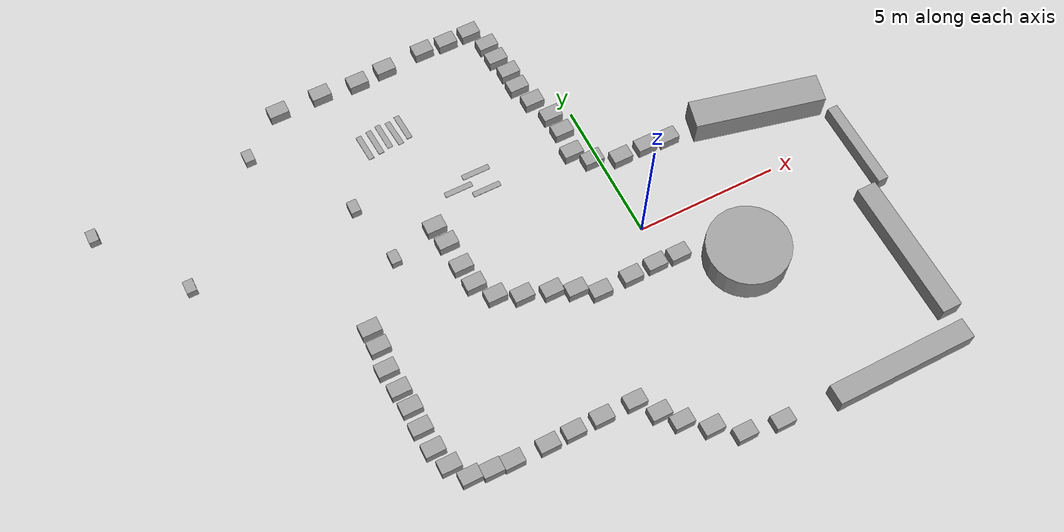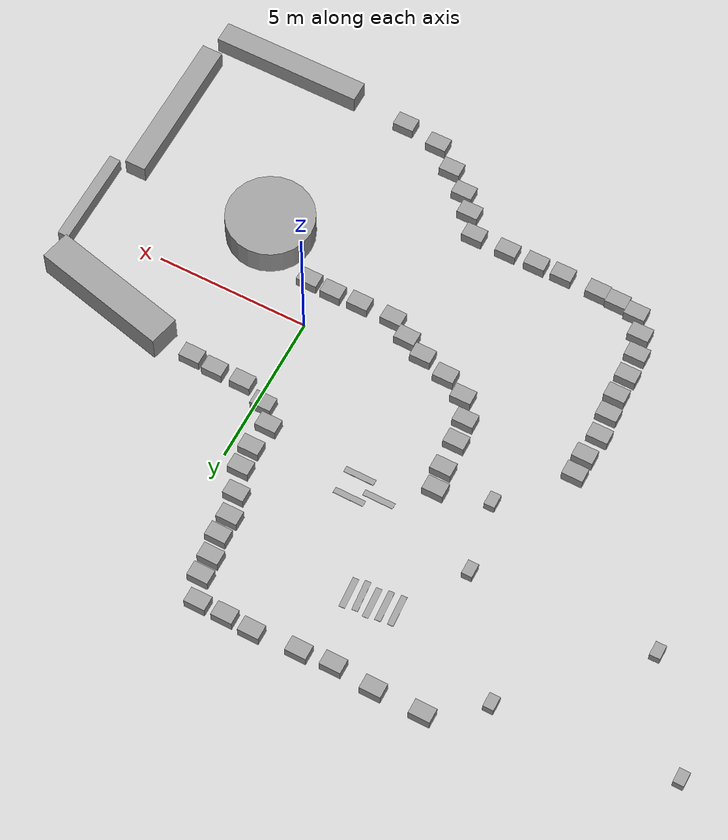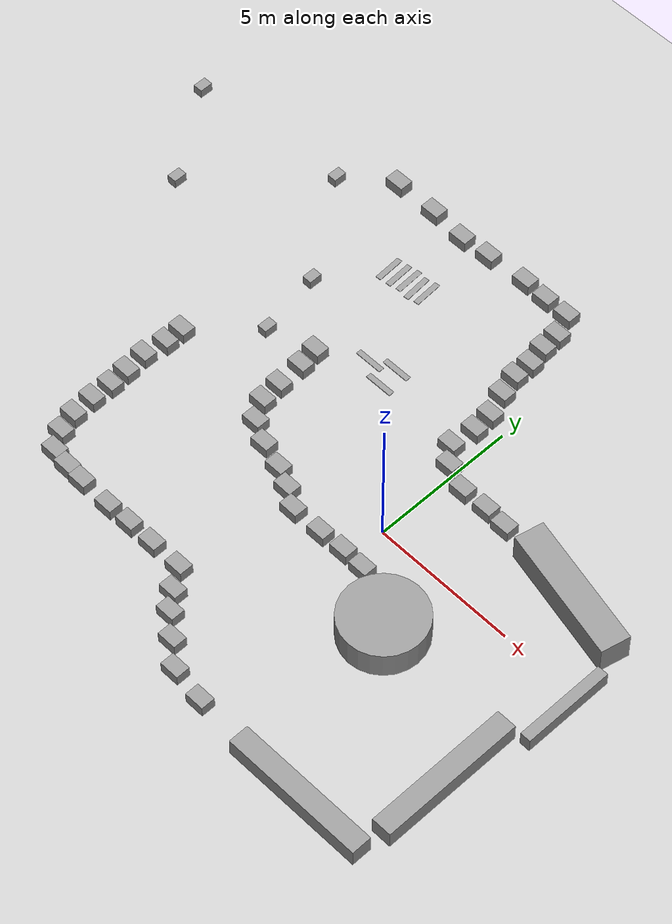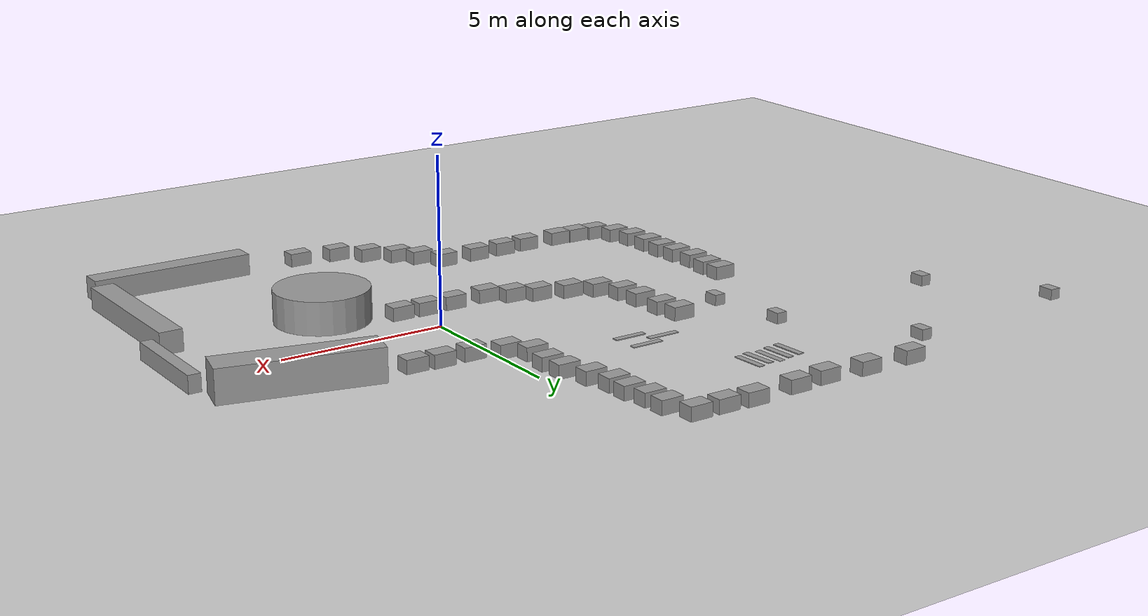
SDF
<sdf version="1.7">
 <world name="default">
  <light name="sun" type="directional">
   <pose>0 0 10 0 -0 0</pose>
   <diffuse>0.8 0.8 0.8 1</diffuse>
   <specular>0.2 0.2 0.2 1</specular>
   <attenuation>
    <range>1000</range>
    <constant>0.9</constant>
    <linear>0.01</linear>
    <quadratic>0.001</quadratic>
   </attenuation>
   <direction>-0.5 0.1 -0.9</direction>
   <spot><inner_angle>0</inner_angle><outer_angle>0</outer_angle><falloff>0</falloff></spot>
  </light>
  <model name="ground_plane">
   <static>1</static>
   <link name="link">
    <collision name="collision">
     <geometry><plane><normal>0 0 1</normal><size>100 100</size></plane></geometry>
     <surface><friction><ode><mu>10</mu><mu2>5</mu2></ode></friction></surface>
    </collision>
    <visual name="visual">
     <cast_shadows>0</cast_shadows>
     <geometry><plane><normal>0 0 1</normal><size>100 100</size></plane></geometry>
     <material>
      <script><uri>file://media/materials/scripts/gazebo.material</uri><name>Gazebo/Grey</name></script>
     </material>
    </visual>
   </link>
  </model>
  <gravity>0 0 -9.8</gravity>
  <magnetic_field>6e-06 2.3e-05 -4.2e-05</magnetic_field>
  <atmosphere type="adiabatic"/>
  <physics type="ode">
   <max_step_size>0.001</max_step_size>
   <real_time_factor>1</real_time_factor>
   <real_time_update_rate>1000</real_time_update_rate>
  </physics>
  <scene><ambient>0.4 0.4 0.4 1</ambient><background>0.7 0.7 0.7 1</background><shadows>1</shadows></scene>
  <spherical_coordinates>
   <surface_model>EARTH_WGS84</surface_model>
   <latitude_deg>0</latitude_deg>
   <longitude_deg>0</longitude_deg>
   <elevation>0</elevation>
   <heading_deg>0</heading_deg>
  </spherical_coordinates>
  <model name="unit_box">
   <pose>5.56434 2.101 0.499999 1e-06 0 -0.230096</pose>
   <link name="link">
    <inertial>
     <mass>1</mass>
     <inertia>
      <ixx>0.166667</ixx>
      <ixy>0</ixy>
      <ixz>0</ixz>
      <iyy>0.166667</iyy>
      <iyz>0</iyz>
      <izz>0.166667</izz>
     </inertia>
    </inertial>
    <collision name="collision"><geometry><box><size>4.56562 1 1</size></box></geometry></collision>
    <visual name="visual">
     <geometry><box><size>4.56562 1 1</size></box></geometry>
     <material>
      <script><name>Gazebo/Grey</name><uri>file://media/materials/scripts/gazebo.material</uri></script>
     </material>
    </visual>
   </link>
  </model>
  <model name="unit_box_0">
   <pose>7.93236 -0.652099 0.261171 -0.000222 -1e-06 -0.002843</pose>
   <link name="link">
    <inertial>
     <mass>1</mass>
     <inertia>
      <ixx>0.166667</ixx>
      <ixy>0</ixy>
      <ixz>0</ixz>
      <iyy>0.166667</iyy>
      <iyz>0</iyz>
      <izz>0.166667</izz>
     </inertia>
    </inertial>
    <collision name="collision"><geometry><box><size>0.370131 3.16213 0.523043</size></box></geometry></collision>
    <visual name="visual">
     <geometry><box><size>0.370131 3.16213 0.523043</size></box></geometry>
     <material>
      <script><name>Gazebo/Grey</name><uri>file://media/materials/scripts/gazebo.material</uri></script>
     </material>
    </visual>
   </link>
  </model>
  <model name="unit_box_1">
   <pose>7.20231 -4.70395 0.327613 0.000962 -1e-06 0.000656</pose>
   <link name="link">
    <inertial>
     <mass>1</mass>
     <inertia>
      <ixx>0.166667</ixx>
      <ixy>0</ixy>
      <ixz>0</ixz>
      <iyy>0.166667</iyy>
      <iyz>0</iyz>
      <izz>0.166667</izz>
     </inertia>
    </inertial>
    <collision name="collision"><geometry><box><size>0.692366 4.93966 0.659975</size></box></geometry></collision>
    <visual name="visual">
     <geometry><box><size>0.692366 4.93966 0.659975</size></box></geometry>
     <material>
      <script><name>Gazebo/Grey</name><uri>file://media/materials/scripts/gazebo.material</uri></script>
     </material>
    </visual>
   </link>
  </model>
  <model name="unit_box_1_clone">
   <pose>4.77985 -7.95704 0.327613 0.000962 -1e-06 -1.5701</pose>
   <link name="link">
    <inertial>
     <mass>1</mass>
     <inertia>
      <ixx>0.166667</ixx>
      <ixy>0</ixy>
      <ixz>0</ixz>
      <iyy>0.166667</iyy>
      <iyz>0</iyz>
      <izz>0.166667</izz>
     </inertia>
    </inertial>
    <collision name="collision"><geometry><box><size>0.692366 4.93966 0.659975</size></box></geometry></collision>
    <visual name="visual">
     <geometry><box><size>0.692366 4.93966 0.659975</size></box></geometry>
     <material>
      <script><name>Gazebo/Grey</name><uri>file://media/materials/scripts/gazebo.material</uri></script>
     </material>
    </visual>
   </link>
  </model>
  <model name="unit_cylinder">
   <pose>2.48692 -2.44229 0.499996 -3e-06 -3e-06 -0.002377</pose>
   <link name="link">
    <inertial>
     <mass>1</mass>
     <inertia><ixx>0.145833</ixx><ixy>0</ixy><ixz>0</ixz><iyy>0.145833</iyy><iyz>0</iyz><izz>0.125</izz></inertia>
    </inertial>
    <collision name="collision">
     <geometry><cylinder><radius>1.41697</radius><length>1</length></cylinder></geometry>
    </collision>
    <visual name="visual">
     <geometry><cylinder><radius>1.41697</radius><length>1</length></cylinder></geometry>
     <material>
      <script><name>Gazebo/Grey</name><uri>file://media/materials/scripts/gazebo.material</uri></script>
     </material>
    </visual>
   </link>
  </model>
  <model name="unit_box_2">
   <pose>2.41246 2.60615 0.202842 0 -0 0</pose>
   <link name="link">
    <inertial>
     <mass>1</mass>
     <inertia>
      <ixx>0.166667</ixx>
      <ixy>0</ixy>
      <ixz>0</ixz>
      <iyy>0.166667</iyy>
      <iyz>0</iyz>
      <izz>0.166667</izz>
     </inertia>
    </inertial>
    <collision name="collision">
     <geometry><box><size>0.686895 0.483439 0.405685</size></box></geometry>
    </collision>
    <visual name="visual">
     <geometry><box><size>0.686895 0.483439 0.405685</size></box></geometry>
     <material>
      <script><name>Gazebo/Grey</name><uri>file://media/materials/scripts/gazebo.material</uri></script>
     </material>
    </visual>
   </link>
  </model>
  <model name="unit_box_2_clone">
   <pose>1.59857 2.67242 0.202842 0 -0 0</pose>
   <link name="link">
    <inertial>
     <mass>1</mass>
     <inertia>
      <ixx>0.166667</ixx>
      <ixy>0</ixy>
      <ixz>0</ixz>
      <iyy>0.166667</iyy>
      <iyz>0</iyz>
      <izz>0.166667</izz>
     </inertia>
    </inertial>
    <collision name="collision">
     <geometry><box><size>0.686895 0.483439 0.405685</size></box></geometry>
    </collision>
    <visual name="visual">
     <geometry><box><size>0.686895 0.483439 0.405685</size></box></geometry>
     <material>
      <script><name>Gazebo/Grey</name><uri>file://media/materials/scripts/gazebo.material</uri></script>
     </material>
    </visual>
   </link>
  </model>
  <model name="unit_box_2_clone_0">
   <pose>0.643604 2.66253 0.202842 0 -0 0</pose>
   <link name="link">
    <inertial>
     <mass>1</mass>
     <inertia>
      <ixx>0.166667</ixx>
      <ixy>0</ixy>
      <ixz>0</ixz>
      <iyy>0.166667</iyy>
      <iyz>0</iyz>
      <izz>0.166667</izz>
     </inertia>
    </inertial>
    <collision name="collision">
     <geometry><box><size>0.686895 0.483439 0.405685</size></box></geometry>
    </collision>
    <visual name="visual">
     <geometry><box><size>0.686895 0.483439 0.405685</size></box></geometry>
     <material>
      <script><name>Gazebo/Grey</name><uri>file://media/materials/scripts/gazebo.material</uri></script>
     </material>
    </visual>
   </link>
  </model>
  <model name="unit_box_2_clone_1">
   <pose>-0.262439 3.01656 0.202842 0 -0 0</pose>
   <link name="link">
    <inertial>
     <mass>1</mass>
     <inertia>
      <ixx>0.166667</ixx>
      <ixy>0</ixy>
      <ixz>0</ixz>
      <iyy>0.166667</iyy>
      <iyz>0</iyz>
      <izz>0.166667</izz>
     </inertia>
    </inertial>
    <collision name="collision">
     <geometry><box><size>0.686895 0.483439 0.405685</size></box></geometry>
    </collision>
    <visual name="visual">
     <geometry><box><size>0.686895 0.483439 0.405685</size></box></geometry>
     <material>
      <script><name>Gazebo/Grey</name><uri>file://media/materials/scripts/gazebo.material</uri></script>
     </material>
    </visual>
   </link>
  </model>
  <model name="unit_box_2_clone_2">
   <pose>-0.747899 3.58207 0.202842 0 -0 0</pose>
   <link name="link">
    <inertial>
     <mass>1</mass>
     <inertia>
      <ixx>0.166667</ixx>
      <ixy>0</ixy>
      <ixz>0</ixz>
      <iyy>0.166667</iyy>
      <iyz>0</iyz>
      <izz>0.166667</izz>
     </inertia>
    </inertial>
    <collision name="collision">
     <geometry><box><size>0.686895 0.483439 0.405685</size></box></geometry>
    </collision>
    <visual name="visual">
     <geometry><box><size>0.686895 0.483439 0.405685</size></box></geometry>
     <material>
      <script><name>Gazebo/Grey</name><uri>file://media/materials/scripts/gazebo.material</uri></script>
     </material>
    </visual>
   </link>
  </model>
  <model name="unit_box_2_clone_3">
   <pose>0.553031 -1.39059 0.202842 0 -0 0</pose>
   <link name="link">
    <inertial>
     <mass>1</mass>
     <inertia>
      <ixx>0.166667</ixx>
      <ixy>0</ixy>
      <ixz>0</ixz>
      <iyy>0.166667</iyy>
      <iyz>0</iyz>
      <izz>0.166667</izz>
     </inertia>
    </inertial>
    <collision name="collision">
     <geometry><box><size>0.686895 0.483439 0.405685</size></box></geometry>
    </collision>
    <visual name="visual">
     <geometry><box><size>0.686895 0.483439 0.405685</size></box></geometry>
     <material>
      <script><name>Gazebo/Grey</name><uri>file://media/materials/scripts/gazebo.material</uri></script>
     </material>
    </visual>
   </link>
  </model>
  <model name="unit_box_2_clone_4">
   <pose>-0.283569 -1.35289 0.202842 0 -0 0</pose>
   <link name="link">
    <inertial>
     <mass>1</mass>
     <inertia>
      <ixx>0.166667</ixx>
      <ixy>0</ixy>
      <ixz>0</ixz>
      <iyy>0.166667</iyy>
      <iyz>0</iyz>
      <izz>0.166667</izz>
     </inertia>
    </inertial>
    <collision name="collision">
     <geometry><box><size>0.686895 0.483439 0.405685</size></box></geometry>
    </collision>
    <visual name="visual">
     <geometry><box><size>0.686895 0.483439 0.405685</size></box></geometry>
     <material>
      <script><name>Gazebo/Grey</name><uri>file://media/materials/scripts/gazebo.material</uri></script>
     </material>
    </visual>
   </link>
  </model>
  <model name="unit_box_2_clone_5">
   <pose>-1.20028 -1.38502 0.202842 0 -0 0</pose>
   <link name="link">
    <inertial>
     <mass>1</mass>
     <inertia>
      <ixx>0.166667</ixx>
      <ixy>0</ixy>
      <ixz>0</ixz>
      <iyy>0.166667</iyy>
      <iyz>0</iyz>
      <izz>0.166667</izz>
     </inertia>
    </inertial>
    <collision name="collision">
     <geometry><box><size>0.686895 0.483439 0.405685</size></box></geometry>
    </collision>
    <visual name="visual">
     <geometry><box><size>0.686895 0.483439 0.405685</size></box></geometry>
     <material>
      <script><name>Gazebo/Grey</name><uri>file://media/materials/scripts/gazebo.material</uri></script>
     </material>
    </visual>
   </link>
  </model>
  <model name="unit_box_2_clone_6">
   <pose>0.558147 -7.80664 0.202842 0 -0 0</pose>
   <link name="link">
    <inertial>
     <mass>1</mass>
     <inertia>
      <ixx>0.166667</ixx>
      <ixy>0</ixy>
      <ixz>0</ixz>
      <iyy>0.166667</iyy>
      <iyz>0</iyz>
      <izz>0.166667</izz>
     </inertia>
    </inertial>
    <collision name="collision">
     <geometry><box><size>0.686895 0.483439 0.405685</size></box></geometry>
    </collision>
    <visual name="visual">
     <geometry><box><size>0.686895 0.483439 0.405685</size></box></geometry>
     <material>
      <script><name>Gazebo/Grey</name><uri>file://media/materials/scripts/gazebo.material</uri></script>
     </material>
    </visual>
   </link>
  </model>
  <model name="unit_box_2_clone_7">
   <pose>-0.684612 -7.62182 0.202842 0 -0 0</pose>
   <link name="link">
    <inertial>
     <mass>1</mass>
     <inertia>
      <ixx>0.166667</ixx>
      <ixy>0</ixy>
      <ixz>0</ixz>
      <iyy>0.166667</iyy>
      <iyz>0</iyz>
      <izz>0.166667</izz>
     </inertia>
    </inertial>
    <collision name="collision">
     <geometry><box><size>0.686895 0.483439 0.405685</size></box></geometry>
    </collision>
    <visual name="visual">
     <geometry><box><size>0.686895 0.483439 0.405685</size></box></geometry>
     <material>
      <script><name>Gazebo/Grey</name><uri>file://media/materials/scripts/gazebo.material</uri></script>
     </material>
    </visual>
   </link>
  </model>
  <model name="unit_box_2_clone_8">
   <pose>-1.48082 -7 0.202842 0 -0 0</pose>
   <link name="link">
    <inertial>
     <mass>1</mass>
     <inertia>
      <ixx>0.166667</ixx>
      <ixy>0</ixy>
      <ixz>0</ixz>
      <iyy>0.166667</iyy>
      <iyz>0</iyz>
      <izz>0.166667</izz>
     </inertia>
    </inertial>
    <collision name="collision">
     <geometry><box><size>0.686895 0.483439 0.405685</size></box></geometry>
    </collision>
    <visual name="visual">
     <geometry><box><size>0.686895 0.483439 0.405685</size></box></geometry>
     <material>
      <script><name>Gazebo/Grey</name><uri>file://media/materials/scripts/gazebo.material</uri></script>
     </material>
    </visual>
   </link>
  </model>
  <model name="unit_box_2_clone_9">
   <pose>-2.2106 -6.41438 0.202842 0 -0 0</pose>
   <link name="link">
    <inertial>
     <mass>1</mass>
     <inertia>
      <ixx>0.166667</ixx>
      <ixy>0</ixy>
      <ixz>0</ixz>
      <iyy>0.166667</iyy>
      <iyz>0</iyz>
      <izz>0.166667</izz>
     </inertia>
    </inertial>
    <collision name="collision">
     <geometry><box><size>0.686895 0.483439 0.405685</size></box></geometry>
    </collision>
    <visual name="visual">
     <geometry><box><size>0.686895 0.483439 0.405685</size></box></geometry>
     <material>
      <script><name>Gazebo/Grey</name><uri>file://media/materials/scripts/gazebo.material</uri></script>
     </material>
    </visual>
   </link>
  </model>
  <model name="unit_box_2_clone_10">
   <pose>-2.69473 -5.85543 0.202842 0 -0 0</pose>
   <link name="link">
    <inertial>
     <mass>1</mass>
     <inertia>
      <ixx>0.166667</ixx>
      <ixy>0</ixy>
      <ixz>0</ixz>
      <iyy>0.166667</iyy>
      <iyz>0</iyz>
      <izz>0.166667</izz>
     </inertia>
    </inertial>
    <collision name="collision">
     <geometry><box><size>0.686895 0.483439 0.405685</size></box></geometry>
    </collision>
    <visual name="visual">
     <geometry><box><size>0.686895 0.483439 0.405685</size></box></geometry>
     <material>
      <script><name>Gazebo/Grey</name><uri>file://media/materials/scripts/gazebo.material</uri></script>
     </material>
    </visual>
   </link>
  </model>
  <model name="unit_box_2_clone_11">
   <pose>-3.19322 -5.18431 0.202842 0 -0 0</pose>
   <link name="link">
    <inertial>
     <mass>1</mass>
     <inertia>
      <ixx>0.166667</ixx>
      <ixy>0</ixy>
      <ixz>0</ixz>
      <iyy>0.166667</iyy>
      <iyz>0</iyz>
      <izz>0.166667</izz>
     </inertia>
    </inertial>
    <collision name="collision">
     <geometry><box><size>0.686895 0.483439 0.405685</size></box></geometry>
    </collision>
    <visual name="visual">
     <geometry><box><size>0.686895 0.483439 0.405685</size></box></geometry>
     <material>
      <script><name>Gazebo/Grey</name><uri>file://media/materials/scripts/gazebo.material</uri></script>
     </material>
    </visual>
   </link>
  </model>
  <model name="unit_box_2_clone_12">
   <pose>-4.34919 -5.17516 0.202842 0 -0 0</pose>
   <link name="link">
    <inertial>
     <mass>1</mass>
     <inertia>
      <ixx>0.166667</ixx>
      <ixy>0</ixy>
      <ixz>0</ixz>
      <iyy>0.166667</iyy>
      <iyz>0</iyz>
      <izz>0.166667</izz>
     </inertia>
    </inertial>
    <collision name="collision">
     <geometry><box><size>0.686895 0.483439 0.405685</size></box></geometry>
    </collision>
    <visual name="visual">
     <geometry><box><size>0.686895 0.483439 0.405685</size></box></geometry>
     <material>
      <script><name>Gazebo/Grey</name><uri>file://media/materials/scripts/gazebo.material</uri></script>
     </material>
    </visual>
   </link>
  </model>
  <model name="unit_box_2_clone_13">
   <pose>-5.33568 -5.18119 0.202842 0 -0 0</pose>
   <link name="link">
    <inertial>
     <mass>1</mass>
     <inertia>
      <ixx>0.166667</ixx>
      <ixy>0</ixy>
      <ixz>0</ixz>
      <iyy>0.166667</iyy>
      <iyz>0</iyz>
      <izz>0.166667</izz>
     </inertia>
    </inertial>
    <collision name="collision">
     <geometry><box><size>0.686895 0.483439 0.405685</size></box></geometry>
    </collision>
    <visual name="visual">
     <geometry><box><size>0.686895 0.483439 0.405685</size></box></geometry>
     <material>
      <script><name>Gazebo/Grey</name><uri>file://media/materials/scripts/gazebo.material</uri></script>
     </material>
    </visual>
   </link>
  </model>
  <model name="unit_box_2_clone_14">
   <pose>-6.23283 -5.20442 0.202842 0 -0 0</pose>
   <link name="link">
    <inertial>
     <mass>1</mass>
     <inertia>
      <ixx>0.166667</ixx>
      <ixy>0</ixy>
      <ixz>0</ixz>
      <iyy>0.166667</iyy>
      <iyz>0</iyz>
      <izz>0.166667</izz>
     </inertia>
    </inertial>
    <collision name="collision">
     <geometry><box><size>0.686895 0.483439 0.405685</size></box></geometry>
    </collision>
    <visual name="visual">
     <geometry><box><size>0.686895 0.483439 0.405685</size></box></geometry>
     <material>
      <script><name>Gazebo/Grey</name><uri>file://media/materials/scripts/gazebo.material</uri></script>
     </material>
    </visual>
   </link>
  </model>
  <model name="unit_box_2_clone_15">
   <pose>-7.42973 -5.17292 0.202842 0 0 -0.002489</pose>
   <link name="link">
    <inertial>
     <mass>1</mass>
     <inertia>
      <ixx>0.166667</ixx>
      <ixy>0</ixy>
      <ixz>0</ixz>
      <iyy>0.166667</iyy>
      <iyz>0</iyz>
      <izz>0.166667</izz>
     </inertia>
    </inertial>
    <collision name="collision">
     <geometry><box><size>0.686895 0.483439 0.405685</size></box></geometry>
    </collision>
    <visual name="visual">
     <geometry><box><size>0.686895 0.483439 0.405685</size></box></geometry>
     <material>
      <script><name>Gazebo/Grey</name><uri>file://media/materials/scripts/gazebo.material</uri></script>
     </material>
    </visual>
   </link>
  </model>
  <model name="unit_box_2_clone_16">
   <pose>-2.34294 -1.39677 0.202842 0 0 -0.01697</pose>
   <link name="link">
    <inertial>
     <mass>1</mass>
     <inertia>
      <ixx>0.166667</ixx>
      <ixy>0</ixy>
      <ixz>0</ixz>
      <iyy>0.166667</iyy>
      <iyz>0</iyz>
      <izz>0.166667</izz>
     </inertia>
    </inertial>
    <collision name="collision">
     <geometry><box><size>0.686895 0.483439 0.405685</size></box></geometry>
    </collision>
    <visual name="visual">
     <geometry><box><size>0.686895 0.483439 0.405685</size></box></geometry>
     <material>
      <script><name>Gazebo/Grey</name><uri>file://media/materials/scripts/gazebo.material</uri></script>
     </material>
    </visual>
   </link>
  </model>
  <model name="unit_box_2_clone_17">
   <pose>-3.02319 -0.994619 0.202842 0 0 -0.016986</pose>
   <link name="link">
    <inertial>
     <mass>1</mass>
     <inertia>
      <ixx>0.166667</ixx>
      <ixy>0</ixy>
      <ixz>0</ixz>
      <iyy>0.166667</iyy>
      <iyz>0</iyz>
      <izz>0.166667</izz>
     </inertia>
    </inertial>
    <collision name="collision">
     <geometry><box><size>0.686895 0.483439 0.405685</size></box></geometry>
    </collision>
    <visual name="visual">
     <geometry><box><size>0.686895 0.483439 0.405685</size></box></geometry>
     <material>
      <script><name>Gazebo/Grey</name><uri>file://media/materials/scripts/gazebo.material</uri></script>
     </material>
    </visual>
   </link>
  </model>
  <model name="unit_box_2_clone_18">
   <pose>-3.72995 -0.670648 0.202842 0 -0 0</pose>
   <link name="link">
    <inertial>
     <mass>1</mass>
     <inertia>
      <ixx>0.166667</ixx>
      <ixy>0</ixy>
      <ixz>0</ixz>
      <iyy>0.166667</iyy>
      <iyz>0</iyz>
      <izz>0.166667</izz>
     </inertia>
    </inertial>
    <collision name="collision">
     <geometry><box><size>0.686895 0.483439 0.405685</size></box></geometry>
    </collision>
    <visual name="visual">
     <geometry><box><size>0.686895 0.483439 0.405685</size></box></geometry>
     <material>
      <script><name>Gazebo/Grey</name><uri>file://media/materials/scripts/gazebo.material</uri></script>
     </material>
    </visual>
   </link>
  </model>
  <model name="unit_box_2_clone_19">
   <pose>-4.6501 -0.388828 0.202842 0 -0 0</pose>
   <link name="link">
    <inertial>
     <mass>1</mass>
     <inertia>
      <ixx>0.166667</ixx>
      <ixy>0</ixy>
      <ixz>0</ixz>
      <iyy>0.166667</iyy>
      <iyz>0</iyz>
      <izz>0.166667</izz>
     </inertia>
    </inertial>
    <collision name="collision">
     <geometry><box><size>0.686895 0.483439 0.405685</size></box></geometry>
    </collision>
    <visual name="visual">
     <geometry><box><size>0.686895 0.483439 0.405685</size></box></geometry>
     <material>
      <script><name>Gazebo/Grey</name><uri>file://media/materials/scripts/gazebo.material</uri></script>
     </material>
    </visual>
   </link>
  </model>
  <model name="unit_box_2_clone_20">
   <pose>-5.43112 0 0.202842 0 -0 0</pose>
   <link name="link">
    <inertial>
     <mass>1</mass>
     <inertia>
      <ixx>0.166667</ixx>
      <ixy>0</ixy>
      <ixz>0</ixz>
      <iyy>0.166667</iyy>
      <iyz>0</iyz>
      <izz>0.166667</izz>
     </inertia>
    </inertial>
    <collision name="collision">
     <geometry><box><size>0.686895 0.483439 0.405685</size></box></geometry>
    </collision>
    <visual name="visual">
     <geometry><box><size>0.686895 0.483439 0.405685</size></box></geometry>
     <material>
      <script><name>Gazebo/Grey</name><uri>file://media/materials/scripts/gazebo.material</uri></script>
     </material>
    </visual>
   </link>
  </model>
  <model name="unit_box_2_clone_21">
   <pose>-9.51524 0.737028 0.202842 0 -0 0</pose>
   <link name="link">
    <inertial>
     <mass>1</mass>
     <inertia>
      <ixx>0.166667</ixx>
      <ixy>0</ixy>
      <ixz>0</ixz>
      <iyy>0.166667</iyy>
      <iyz>0</iyz>
      <izz>0.166667</izz>
     </inertia>
    </inertial>
    <collision name="collision">
     <geometry><box><size>0.686895 0.483439 0.405685</size></box></geometry>
    </collision>
    <visual name="visual">
     <geometry><box><size>0.686895 0.483439 0.405685</size></box></geometry>
     <material>
      <script><name>Gazebo/Grey</name><uri>file://media/materials/scripts/gazebo.material</uri></script>
     </material>
    </visual>
   </link>
  </model>
  <model name="unit_box_2_clone_22">
   <pose>-9.51543 0.071651 0.202842 0 -0 0</pose>
   <link name="link">
    <inertial>
     <mass>1</mass>
     <inertia>
      <ixx>0.166667</ixx>
      <ixy>0</ixy>
      <ixz>0</ixz>
      <iyy>0.166667</iyy>
      <iyz>0</iyz>
      <izz>0.166667</izz>
     </inertia>
    </inertial>
    <collision name="collision">
     <geometry><box><size>0.686895 0.483439 0.405685</size></box></geometry>
    </collision>
    <visual name="visual">
     <geometry><box><size>0.686895 0.483439 0.405685</size></box></geometry>
     <material>
      <script><name>Gazebo/Grey</name><uri>file://media/materials/scripts/gazebo.material</uri></script>
     </material>
    </visual>
   </link>
  </model>
  <model name="unit_box_2_clone_23">
   <pose>-9.61406 -0.736189 0.202842 0 -0 0</pose>
   <link name="link">
    <inertial>
     <mass>1</mass>
     <inertia>
      <ixx>0.166667</ixx>
      <ixy>0</ixy>
      <ixz>0</ixz>
      <iyy>0.166667</iyy>
      <iyz>0</iyz>
      <izz>0.166667</izz>
     </inertia>
    </inertial>
    <collision name="collision">
     <geometry><box><size>0.686895 0.483439 0.405685</size></box></geometry>
    </collision>
    <visual name="visual">
     <geometry><box><size>0.686895 0.483439 0.405685</size></box></geometry>
     <material>
      <script><name>Gazebo/Grey</name><uri>file://media/materials/scripts/gazebo.material</uri></script>
     </material>
    </visual>
   </link>
  </model>
  <model name="unit_box_2_clone_24">
   <pose>-9.53495 -1.51675 0.202842 0 -0 0</pose>
   <link name="link">
    <inertial>
     <mass>1</mass>
     <inertia>
      <ixx>0.166667</ixx>
      <ixy>0</ixy>
      <ixz>0</ixz>
      <iyy>0.166667</iyy>
      <iyz>0</iyz>
      <izz>0.166667</izz>
     </inertia>
    </inertial>
    <collision name="collision">
     <geometry><box><size>0.686895 0.483439 0.405685</size></box></geometry>
    </collision>
    <visual name="visual">
     <geometry><box><size>0.686895 0.483439 0.405685</size></box></geometry>
     <material>
      <script><name>Gazebo/Grey</name><uri>file://media/materials/scripts/gazebo.material</uri></script>
     </material>
    </visual>
   </link>
  </model>
  <model name="unit_box_2_clone_25">
   <pose>-9.47472 -2.20674 0.202842 0 -0 0</pose>
   <link name="link">
    <inertial>
     <mass>1</mass>
     <inertia>
      <ixx>0.166667</ixx>
      <ixy>0</ixy>
      <ixz>0</ixz>
      <iyy>0.166667</iyy>
      <iyz>0</iyz>
      <izz>0.166667</izz>
     </inertia>
    </inertial>
    <collision name="collision">
     <geometry><box><size>0.686895 0.483439 0.405685</size></box></geometry>
    </collision>
    <visual name="visual">
     <geometry><box><size>0.686895 0.483439 0.405685</size></box></geometry>
     <material>
      <script><name>Gazebo/Grey</name><uri>file://media/materials/scripts/gazebo.material</uri></script>
     </material>
    </visual>
   </link>
  </model>
  <model name="unit_box_2_clone_26">
   <pose>-9.4789 -2.95464 0.202842 0 -0 0</pose>
   <link name="link">
    <inertial>
     <mass>1</mass>
     <inertia>
      <ixx>0.166667</ixx>
      <ixy>0</ixy>
      <ixz>0</ixz>
      <iyy>0.166667</iyy>
      <iyz>0</iyz>
      <izz>0.166667</izz>
     </inertia>
    </inertial>
    <collision name="collision">
     <geometry><box><size>0.686895 0.483439 0.405685</size></box></geometry>
    </collision>
    <visual name="visual">
     <geometry><box><size>0.686895 0.483439 0.405685</size></box></geometry>
     <material>
      <script><name>Gazebo/Grey</name><uri>file://media/materials/scripts/gazebo.material</uri></script>
     </material>
    </visual>
   </link>
  </model>
  <model name="unit_box_2_clone_27">
   <pose>-9.42269 -3.74149 0.202842 0 -0 0</pose>
   <link name="link">
    <inertial>
     <mass>1</mass>
     <inertia>
      <ixx>0.166667</ixx>
      <ixy>0</ixy>
      <ixz>0</ixz>
      <iyy>0.166667</iyy>
      <iyz>0</iyz>
      <izz>0.166667</izz>
     </inertia>
    </inertial>
    <collision name="collision">
     <geometry><box><size>0.686895 0.483439 0.405685</size></box></geometry>
    </collision>
    <visual name="visual">
     <geometry><box><size>0.686895 0.483439 0.405685</size></box></geometry>
     <material>
      <script><name>Gazebo/Grey</name><uri>file://media/materials/scripts/gazebo.material</uri></script>
     </material>
    </visual>
   </link>
  </model>
  <model name="unit_box_2_clone_28">
   <pose>-9.2104 -4.42363 0.202842 0 -0 0</pose>
   <link name="link">
    <inertial>
     <mass>1</mass>
     <inertia>
      <ixx>0.166667</ixx>
      <ixy>0</ixy>
      <ixz>0</ixz>
      <iyy>0.166667</iyy>
      <iyz>0</iyz>
      <izz>0.166667</izz>
     </inertia>
    </inertial>
    <collision name="collision">
     <geometry><box><size>0.686895 0.483439 0.405685</size></box></geometry>
    </collision>
    <visual name="visual">
     <geometry><box><size>0.686895 0.483439 0.405685</size></box></geometry>
     <material>
      <script><name>Gazebo/Grey</name><uri>file://media/materials/scripts/gazebo.material</uri></script>
     </material>
    </visual>
   </link>
  </model>
  <model name="unit_box_2_clone_29">
   <pose>-8.80318 -5.02528 0.202842 0 0 -0.002488</pose>
   <link name="link">
    <inertial>
     <mass>1</mass>
     <inertia>
      <ixx>0.166667</ixx>
      <ixy>0</ixy>
      <ixz>0</ixz>
      <iyy>0.166667</iyy>
      <iyz>0</iyz>
      <izz>0.166667</izz>
     </inertia>
    </inertial>
    <collision name="collision">
     <geometry><box><size>0.686895 0.483439 0.405685</size></box></geometry>
    </collision>
    <visual name="visual">
     <geometry><box><size>0.686895 0.483439 0.405685</size></box></geometry>
     <material>
      <script><name>Gazebo/Grey</name><uri>file://media/materials/scripts/gazebo.material</uri></script>
     </material>
    </visual>
   </link>
  </model>
  <model name="unit_box_2_clone_30">
   <pose>-8.11653 -5.13186 0.202842 0 0 -0.002488</pose>
   <link name="link">
    <inertial>
     <mass>1</mass>
     <inertia>
      <ixx>0.166667</ixx>
      <ixy>0</ixy>
      <ixz>0</ixz>
      <iyy>0.166667</iyy>
      <iyz>0</iyz>
      <izz>0.166667</izz>
     </inertia>
    </inertial>
    <collision name="collision">
     <geometry><box><size>0.686895 0.483439 0.405685</size></box></geometry>
    </collision>
    <visual name="visual">
     <geometry><box><size>0.686895 0.483439 0.405685</size></box></geometry>
     <material>
      <script><name>Gazebo/Grey</name><uri>file://media/materials/scripts/gazebo.material</uri></script>
     </material>
    </visual>
   </link>
  </model>
  <model name="unit_box_2_clone_31">
   <pose>-5.85416 0.677848 0.202842 0 -0 0</pose>
   <link name="link">
    <inertial>
     <mass>1</mass>
     <inertia>
      <ixx>0.166667</ixx>
      <ixy>0</ixy>
      <ixz>0</ixz>
      <iyy>0.166667</iyy>
      <iyz>0</iyz>
      <izz>0.166667</izz>
     </inertia>
    </inertial>
    <collision name="collision">
     <geometry><box><size>0.686895 0.483439 0.405685</size></box></geometry>
    </collision>
    <visual name="visual">
     <geometry><box><size>0.686895 0.483439 0.405685</size></box></geometry>
     <material>
      <script><name>Gazebo/Grey</name><uri>file://media/materials/scripts/gazebo.material</uri></script>
     </material>
    </visual>
   </link>
  </model>
  <model name="unit_box_2_clone_32">
   <pose>-5.94013 1.44454 0.202842 0 -0 0</pose>
   <link name="link">
    <inertial>
     <mass>1</mass>
     <inertia>
      <ixx>0.166667</ixx>
      <ixy>0</ixy>
      <ixz>0</ixz>
      <iyy>0.166667</iyy>
      <iyz>0</iyz>
      <izz>0.166667</izz>
     </inertia>
    </inertial>
    <collision name="collision">
     <geometry><box><size>0.686895 0.483439 0.405685</size></box></geometry>
    </collision>
    <visual name="visual">
     <geometry><box><size>0.686895 0.483439 0.405685</size></box></geometry>
     <material>
      <script><name>Gazebo/Grey</name><uri>file://media/materials/scripts/gazebo.material</uri></script>
     </material>
    </visual>
   </link>
  </model>
  <model name="unit_box_2_clone_33">
   <pose>-5.99973 2.41014 0.202842 0 -0 0</pose>
   <link name="link">
    <inertial>
     <mass>1</mass>
     <inertia>
      <ixx>0.166667</ixx>
      <ixy>0</ixy>
      <ixz>0</ixz>
      <iyy>0.166667</iyy>
      <iyz>0</iyz>
      <izz>0.166667</izz>
     </inertia>
    </inertial>
    <collision name="collision">
     <geometry><box><size>0.686895 0.483439 0.405685</size></box></geometry>
    </collision>
    <visual name="visual">
     <geometry><box><size>0.686895 0.483439 0.405685</size></box></geometry>
     <material>
      <script><name>Gazebo/Grey</name><uri>file://media/materials/scripts/gazebo.material</uri></script>
     </material>
    </visual>
   </link>
  </model>
  <model name="unit_box_2_clone_34">
   <pose>-6.1049 3.11571 0.202842 0 -0 0</pose>
   <link name="link">
    <inertial>
     <mass>1</mass>
     <inertia>
      <ixx>0.166667</ixx>
      <ixy>0</ixy>
      <ixz>0</ixz>
      <iyy>0.166667</iyy>
      <iyz>0</iyz>
      <izz>0.166667</izz>
     </inertia>
    </inertial>
    <collision name="collision">
     <geometry><box><size>0.686895 0.483439 0.405685</size></box></geometry>
    </collision>
    <visual name="visual">
     <geometry><box><size>0.686895 0.483439 0.405685</size></box></geometry>
     <material>
      <script><name>Gazebo/Grey</name><uri>file://media/materials/scripts/gazebo.material</uri></script>
     </material>
    </visual>
   </link>
  </model>
  <model name="unit_box_2_clone_35">
   <pose>-0.650294 4.46919 0.202842 0 -0 0</pose>
   <link name="link">
    <inertial>
     <mass>1</mass>
     <inertia>
      <ixx>0.166667</ixx>
      <ixy>0</ixy>
      <ixz>0</ixz>
      <iyy>0.166667</iyy>
      <iyz>0</iyz>
      <izz>0.166667</izz>
     </inertia>
    </inertial>
    <collision name="collision">
     <geometry><box><size>0.686895 0.483439 0.405685</size></box></geometry>
    </collision>
    <visual name="visual">
     <geometry><box><size>0.686895 0.483439 0.405685</size></box></geometry>
     <material>
      <script><name>Gazebo/Grey</name><uri>file://media/materials/scripts/gazebo.material</uri></script>
     </material>
    </visual>
   </link>
  </model>
  <model name="unit_box_2_clone_36">
   <pose>-0.703424 5.19146 0.202842 0 -0 0</pose>
   <link name="link">
    <inertial>
     <mass>1</mass>
     <inertia>
      <ixx>0.166667</ixx>
      <ixy>0</ixy>
      <ixz>0</ixz>
      <iyy>0.166667</iyy>
      <iyz>0</iyz>
      <izz>0.166667</izz>
     </inertia>
    </inertial>
    <collision name="collision">
     <geometry><box><size>0.686895 0.483439 0.405685</size></box></geometry>
    </collision>
    <visual name="visual">
     <geometry><box><size>0.686895 0.483439 0.405685</size></box></geometry>
     <material>
      <script><name>Gazebo/Grey</name><uri>file://media/materials/scripts/gazebo.material</uri></script>
     </material>
    </visual>
   </link>
  </model>
  <model name="unit_box_2_clone_37">
   <pose>-1 6 0.202842 0 -0 0</pose>
   <link name="link">
    <inertial>
     <mass>1</mass>
     <inertia>
      <ixx>0.166667</ixx>
      <ixy>0</ixy>
      <ixz>0</ixz>
      <iyy>0.166667</iyy>
      <iyz>0</iyz>
      <izz>0.166667</izz>
     </inertia>
    </inertial>
    <collision name="collision">
     <geometry><box><size>0.686895 0.483439 0.405685</size></box></geometry>
    </collision>
    <visual name="visual">
     <geometry><box><size>0.686895 0.483439 0.405685</size></box></geometry>
     <material>
      <script><name>Gazebo/Grey</name><uri>file://media/materials/scripts/gazebo.material</uri></script>
     </material>
    </visual>
   </link>
  </model>
  <model name="unit_box_2_clone_38">
   <pose>-1.19788 6.75658 0.202842 0 -0 0</pose>
   <link name="link">
    <inertial>
     <mass>1</mass>
     <inertia>
      <ixx>0.166667</ixx>
      <ixy>0</ixy>
      <ixz>0</ixz>
      <iyy>0.166667</iyy>
      <iyz>0</iyz>
      <izz>0.166667</izz>
     </inertia>
    </inertial>
    <collision name="collision">
     <geometry><box><size>0.686895 0.483439 0.405685</size></box></geometry>
    </collision>
    <visual name="visual">
     <geometry><box><size>0.686895 0.483439 0.405685</size></box></geometry>
     <material>
      <script><name>Gazebo/Grey</name><uri>file://media/materials/scripts/gazebo.material</uri></script>
     </material>
    </visual>
   </link>
  </model>
  <model name="unit_box_2_clone_39">
   <pose>-1.19523 7.42906 0.202842 0 -0 0</pose>
   <link name="link">
    <inertial>
     <mass>1</mass>
     <inertia>
      <ixx>0.166667</ixx>
      <ixy>0</ixy>
      <ixz>0</ixz>
      <iyy>0.166667</iyy>
      <iyz>0</iyz>
      <izz>0.166667</izz>
     </inertia>
    </inertial>
    <collision name="collision">
     <geometry><box><size>0.686895 0.483439 0.405685</size></box></geometry>
    </collision>
    <visual name="visual">
     <geometry><box><size>0.686895 0.483439 0.405685</size></box></geometry>
     <material>
      <script><name>Gazebo/Grey</name><uri>file://media/materials/scripts/gazebo.material</uri></script>
     </material>
    </visual>
   </link>
  </model>
  <model name="unit_box_2_clone_40">
   <pose>-1.33507 8.12528 0.202842 0 -0 0</pose>
   <link name="link">
    <inertial>
     <mass>1</mass>
     <inertia>
      <ixx>0.166667</ixx>
      <ixy>0</ixy>
      <ixz>0</ixz>
      <iyy>0.166667</iyy>
      <iyz>0</iyz>
      <izz>0.166667</izz>
     </inertia>
    </inertial>
    <collision name="collision">
     <geometry><box><size>0.686895 0.483439 0.405685</size></box></geometry>
    </collision>
    <visual name="visual">
     <geometry><box><size>0.686895 0.483439 0.405685</size></box></geometry>
     <material>
      <script><name>Gazebo/Grey</name><uri>file://media/materials/scripts/gazebo.material</uri></script>
     </material>
    </visual>
   </link>
  </model>
  <model name="unit_box_2_clone_41">
   <pose>-1.375 8.78727 0.202842 0 -0 0</pose>
   <link name="link">
    <inertial>
     <mass>1</mass>
     <inertia>
      <ixx>0.166667</ixx>
      <ixy>0</ixy>
      <ixz>0</ixz>
      <iyy>0.166667</iyy>
      <iyz>0</iyz>
      <izz>0.166667</izz>
     </inertia>
    </inertial>
    <collision name="collision">
     <geometry><box><size>0.686895 0.483439 0.405685</size></box></geometry>
    </collision>
    <visual name="visual">
     <geometry><box><size>0.686895 0.483439 0.405685</size></box></geometry>
     <material>
      <script><name>Gazebo/Grey</name><uri>file://media/materials/scripts/gazebo.material</uri></script>
     </material>
    </visual>
   </link>
  </model>
  <model name="unit_box_2_clone_42">
   <pose>-1.7103 9.55019 0.202842 0 -0 0</pose>
   <link name="link">
    <inertial>
     <mass>1</mass>
     <inertia>
      <ixx>0.166667</ixx>
      <ixy>0</ixy>
      <ixz>0</ixz>
      <iyy>0.166667</iyy>
      <iyz>0</iyz>
      <izz>0.166667</izz>
     </inertia>
    </inertial>
    <collision name="collision">
     <geometry><box><size>0.686895 0.483439 0.405685</size></box></geometry>
    </collision>
    <visual name="visual">
     <geometry><box><size>0.686895 0.483439 0.405685</size></box></geometry>
     <material>
      <script><name>Gazebo/Grey</name><uri>file://media/materials/scripts/gazebo.material</uri></script>
     </material>
    </visual>
   </link>
  </model>
  <model name="unit_box_2_clone_43">
   <pose>-2.60223 9.55238 0.202842 0 -0 0</pose>
   <link name="link">
    <inertial>
     <mass>1</mass>
     <inertia>
      <ixx>0.166667</ixx>
      <ixy>0</ixy>
      <ixz>0</ixz>
      <iyy>0.166667</iyy>
      <iyz>0</iyz>
      <izz>0.166667</izz>
     </inertia>
    </inertial>
    <collision name="collision">
     <geometry><box><size>0.686895 0.483439 0.405685</size></box></geometry>
    </collision>
    <visual name="visual">
     <geometry><box><size>0.686895 0.483439 0.405685</size></box></geometry>
     <material>
      <script><name>Gazebo/Grey</name><uri>file://media/materials/scripts/gazebo.material</uri></script>
     </material>
    </visual>
   </link>
  </model>
  <model name="unit_box_2_clone_44">
   <pose>-3.50843 9.60202 0.202842 0 -0 0</pose>
   <link name="link">
    <inertial>
     <mass>1</mass>
     <inertia>
      <ixx>0.166667</ixx>
      <ixy>0</ixy>
      <ixz>0</ixz>
      <iyy>0.166667</iyy>
      <iyz>0</iyz>
      <izz>0.166667</izz>
     </inertia>
    </inertial>
    <collision name="collision">
     <geometry><box><size>0.686895 0.483439 0.405685</size></box></geometry>
    </collision>
    <visual name="visual">
     <geometry><box><size>0.686895 0.483439 0.405685</size></box></geometry>
     <material>
      <script><name>Gazebo/Grey</name><uri>file://media/materials/scripts/gazebo.material</uri></script>
     </material>
    </visual>
   </link>
  </model>
  <model name="unit_box_2_clone_45">
   <pose>-5 9.50836 0.202842 0 -0 0</pose>
   <link name="link">
    <inertial>
     <mass>1</mass>
     <inertia>
      <ixx>0.166667</ixx>
      <ixy>0</ixy>
      <ixz>0</ixz>
      <iyy>0.166667</iyy>
      <iyz>0</iyz>
      <izz>0.166667</izz>
     </inertia>
    </inertial>
    <collision name="collision">
     <geometry><box><size>0.686895 0.483439 0.405685</size></box></geometry>
    </collision>
    <visual name="visual">
     <geometry><box><size>0.686895 0.483439 0.405685</size></box></geometry>
     <material>
      <script><name>Gazebo/Grey</name><uri>file://media/materials/scripts/gazebo.material</uri></script>
     </material>
    </visual>
   </link>
  </model>
  <model name="unit_box_2_clone_46">
   <pose>-6.07387 9.42628 0.202842 0 -0 0</pose>
   <link name="link">
    <inertial>
     <mass>1</mass>
     <inertia>
      <ixx>0.166667</ixx>
      <ixy>0</ixy>
      <ixz>0</ixz>
      <iyy>0.166667</iyy>
      <iyz>0</iyz>
      <izz>0.166667</izz>
     </inertia>
    </inertial>
    <collision name="collision">
     <geometry><box><size>0.686895 0.483439 0.405685</size></box></geometry>
    </collision>
    <visual name="visual">
     <geometry><box><size>0.686895 0.483439 0.405685</size></box></geometry>
     <material>
      <script><name>Gazebo/Grey</name><uri>file://media/materials/scripts/gazebo.material</uri></script>
     </material>
    </visual>
   </link>
  </model>
  <model name="unit_box_2_clone_47">
   <pose>-7.42275 9.54484 0.202842 0 -0 0</pose>
   <link name="link">
    <inertial>
     <mass>1</mass>
     <inertia>
      <ixx>0.166667</ixx>
      <ixy>0</ixy>
      <ixz>0</ixz>
      <iyy>0.166667</iyy>
      <iyz>0</iyz>
      <izz>0.166667</izz>
     </inertia>
    </inertial>
    <collision name="collision">
     <geometry><box><size>0.686895 0.483439 0.405685</size></box></geometry>
    </collision>
    <visual name="visual">
     <geometry><box><size>0.686895 0.483439 0.405685</size></box></geometry>
     <material>
      <script><name>Gazebo/Grey</name><uri>file://media/materials/scripts/gazebo.material</uri></script>
     </material>
    </visual>
   </link>
  </model>
  <model name="unit_box_2_clone_48">
   <pose>-9 9.55545 0.202842 0 -0 0</pose>
   <link name="link">
    <inertial>
     <mass>1</mass>
     <inertia>
      <ixx>0.166667</ixx>
      <ixy>0</ixy>
      <ixz>0</ixz>
      <iyy>0.166667</iyy>
      <iyz>0</iyz>
      <izz>0.166667</izz>
     </inertia>
    </inertial>
    <collision name="collision">
     <geometry><box><size>0.686895 0.483439 0.405685</size></box></geometry>
    </collision>
    <visual name="visual">
     <geometry><box><size>0.686895 0.483439 0.405685</size></box></geometry>
     <material>
      <script><name>Gazebo/Grey</name><uri>file://media/materials/scripts/gazebo.material</uri></script>
     </material>
    </visual>
   </link>
  </model>
  <model name="unit_box_3">
   <pose>-3.90015 3.70878 0.014494 0 -0 0</pose>
   <link name="link">
    <inertial>
     <mass>1</mass>
     <inertia>
      <ixx>0.166667</ixx>
      <ixy>0</ixy>
      <ixz>0</ixz>
      <iyy>0.166667</iyy>
      <iyz>0</iyz>
      <izz>0.166667</izz>
     </inertia>
    </inertial>
    <collision name="collision"><geometry><box><size>1 0.19429 0.0289883</size></box></geometry></collision>
    <visual name="visual">
     <geometry><box><size>1 0.19429 0.0289883</size></box></geometry>
     <material>
      <script><name>Gazebo/Grey</name><uri>file://media/materials/scripts/gazebo.material</uri></script>
     </material>
    </visual>
   </link>
  </model>
  <model name="unit_box_3_clone">
   <pose>-4.75517 4.12087 0.011012 0 -0 0.000483</pose>
   <link name="link">
    <inertial>
     <mass>1</mass>
     <inertia>
      <ixx>0.166667</ixx>
      <ixy>0</ixy>
      <ixz>0</ixz>
      <iyy>0.166667</iyy>
      <iyz>0</iyz>
      <izz>0.166667</izz>
     </inertia>
    </inertial>
    <collision name="collision"><geometry><box><size>1 0.19429 0.0220251</size></box></geometry></collision>
    <visual name="visual">
     <geometry><box><size>1 0.19429 0.0220251</size></box></geometry>
     <material>
      <script><name>Gazebo/Grey</name><uri>file://media/materials/scripts/gazebo.material</uri></script>
     </material>
    </visual>
   </link>
  </model>
  <model name="unit_box_3_clone_0">
   <pose>-3.94374 4.46103 0.011875 0 -0 0.000526</pose>
   <link name="link">
    <inertial>
     <mass>1</mass>
     <inertia>
      <ixx>0.166667</ixx>
      <ixy>0</ixy>
      <ixz>0</ixz>
      <iyy>0.166667</iyy>
      <iyz>0</iyz>
      <izz>0.166667</izz>
     </inertia>
    </inertial>
    <collision name="collision"><geometry><box><size>1 0.19429 0.0237491</size></box></geometry></collision>
    <visual name="visual">
     <geometry><box><size>1 0.19429 0.0237491</size></box></geometry>
     <material>
      <script><name>Gazebo/Grey</name><uri>file://media/materials/scripts/gazebo.material</uri></script>
     </material>
    </visual>
   </link>
  </model>
  <model name="unit_box_3_clone_1">
   <pose>-6.88336 7.02824 0.013981 0 -0 -1.51119</pose>
   <link name="link">
    <inertial>
     <mass>1</mass>
     <inertia>
      <ixx>0.166667</ixx>
      <ixy>0</ixy>
      <ixz>0</ixz>
      <iyy>0.166667</iyy>
      <iyz>0</iyz>
      <izz>0.166667</izz>
     </inertia>
    </inertial>
    <collision name="collision"><geometry><box><size>1 0.19429 0.0279632</size></box></geometry></collision>
    <visual name="visual">
     <geometry><box><size>1 0.19429 0.0279632</size></box></geometry>
     <material>
      <script><name>Gazebo/Grey</name><uri>file://media/materials/scripts/gazebo.material</uri></script>
     </material>
    </visual>
   </link>
  </model>
  <model name="unit_box_3_clone_2">
   <pose>-5.74918 7.10219 0.010363 0 0 -1.48819</pose>
   <link name="link">
    <inertial>
     <mass>1</mass>
     <inertia>
      <ixx>0.166667</ixx>
      <ixy>0</ixy>
      <ixz>0</ixz>
      <iyy>0.166667</iyy>
      <iyz>0</iyz>
      <izz>0.166667</izz>
     </inertia>
    </inertial>
    <collision name="collision"><geometry><box><size>1 0.19429 0.020726</size></box></geometry></collision>
    <visual name="visual">
     <geometry><box><size>1 0.19429 0.020726</size></box></geometry>
     <material>
      <script><name>Gazebo/Grey</name><uri>file://media/materials/scripts/gazebo.material</uri></script>
     </material>
    </visual>
   </link>
  </model>
  <model name="unit_box_3_clone_3">
   <pose>-6.12735 7.14712 0.005775 0 -0 1.62604</pose>
   <link name="link">
    <inertial>
     <mass>1</mass>
     <inertia>
      <ixx>0.166667</ixx>
      <ixy>0</ixy>
      <ixz>0</ixz>
      <iyy>0.166667</iyy>
      <iyz>0</iyz>
      <izz>0.166667</izz>
     </inertia>
    </inertial>
    <collision name="collision"><geometry><box><size>1 0.19429 0.0115501</size></box></geometry></collision>
    <visual name="visual">
     <geometry><box><size>1 0.19429 0.0115501</size></box></geometry>
     <material>
      <script><name>Gazebo/Grey</name><uri>file://media/materials/scripts/gazebo.material</uri></script>
     </material>
    </visual>
   </link>
  </model>
  <model name="unit_box_3_clone_1_clone">
   <pose>-6.49142 7.07181 0.01252 0 0 -1.51098</pose>
   <link name="link">
    <inertial>
     <mass>1</mass>
     <inertia>
      <ixx>0.166667</ixx>
      <ixy>0</ixy>
      <ixz>0</ixz>
      <iyy>0.166667</iyy>
      <iyz>0</iyz>
      <izz>0.166667</izz>
     </inertia>
    </inertial>
    <collision name="collision"><geometry><box><size>1 0.19429 0.0250399</size></box></geometry></collision>
    <visual name="visual">
     <geometry><box><size>1 0.19429 0.0250399</size></box></geometry>
     <material>
      <script><name>Gazebo/Grey</name><uri>file://media/materials/scripts/gazebo.material</uri></script>
     </material>
    </visual>
   </link>
  </model>
  <model name="unit_box_3_clone_1_clone_0">
   <pose>-5.38318 7.18701 0.010628 0 0 -1.51087</pose>
   <link name="link">
    <inertial>
     <mass>1</mass>
     <inertia>
      <ixx>0.166667</ixx>
      <ixy>0</ixy>
      <ixz>0</ixz>
      <iyy>0.166667</iyy>
      <iyz>0</iyz>
      <izz>0.166667</izz>
     </inertia>
    </inertial>
    <collision name="collision"><geometry><box><size>1 0.19429 0.0212559</size></box></geometry></collision>
    <visual name="visual">
     <geometry><box><size>1 0.19429 0.0212559</size></box></geometry>
     <material>
      <script><name>Gazebo/Grey</name><uri>file://media/materials/scripts/gazebo.material</uri></script>
     </material>
    </visual>
   </link>
  </model>
  <model name="unit_box_4">
   <pose>-7.76488 2.68227 0.161956 0 -0 -1.6e-05</pose>
   <link name="link">
    <inertial>
     <mass>1</mass>
     <inertia>
      <ixx>0.166667</ixx>
      <ixy>0</ixy>
      <ixz>0</ixz>
      <iyy>0.166667</iyy>
      <iyz>0</iyz>
      <izz>0.166667</izz>
     </inertia>
    </inertial>
    <collision name="collision">
     <geometry><box><size>0.344587 0.468445 0.323912</size></box></geometry>
    </collision>
    <visual name="visual">
     <geometry><box><size>0.344587 0.468445 0.323912</size></box></geometry>
     <material>
      <script><name>Gazebo/Grey</name><uri>file://media/materials/scripts/gazebo.material</uri></script>
     </material>
    </visual>
   </link>
  </model>
  <model name="unit_box_4_clone">
   <pose>-8.18625 4.97571 0.161956 0 -0 -1.6e-05</pose>
   <link name="link">
    <inertial>
     <mass>1</mass>
     <inertia>
      <ixx>0.166667</ixx>
      <ixy>0</ixy>
      <ixz>0</ixz>
      <iyy>0.166667</iyy>
      <iyz>0</iyz>
      <izz>0.166667</izz>
     </inertia>
    </inertial>
    <collision name="collision">
     <geometry><box><size>0.344587 0.468445 0.323912</size></box></geometry>
    </collision>
    <visual name="visual">
     <geometry><box><size>0.344587 0.468445 0.323912</size></box></geometry>
     <material>
      <script><name>Gazebo/Grey</name><uri>file://media/materials/scripts/gazebo.material</uri></script>
     </material>
    </visual>
   </link>
  </model>
  <model name="unit_box_4_clone_0">
   <pose>-10.5823 8.35907 0.161956 0 -0 -1.6e-05</pose>
   <link name="link">
    <inertial>
     <mass>1</mass>
     <inertia>
      <ixx>0.166667</ixx>
      <ixy>0</ixy>
      <ixz>0</ixz>
      <iyy>0.166667</iyy>
      <iyz>0</iyz>
      <izz>0.166667</izz>
     </inertia>
    </inertial>
    <collision name="collision">
     <geometry><box><size>0.344587 0.468445 0.323912</size></box></geometry>
    </collision>
    <visual name="visual">
     <geometry><box><size>0.344587 0.468445 0.323912</size></box></geometry>
     <material>
      <script><name>Gazebo/Grey</name><uri>file://media/materials/scripts/gazebo.material</uri></script>
     </material>
    </visual>
   </link>
  </model>
  <model name="unit_box_4_clone_1">
   <pose>-14.0764 4.72368 0.161956 0 -0 -1.6e-05</pose>
   <link name="link">
    <inertial>
     <mass>1</mass>
     <inertia>
      <ixx>0.166667</ixx>
      <ixy>0</ixy>
      <ixz>0</ixz>
      <iyy>0.166667</iyy>
      <iyz>0</iyz>
      <izz>0.166667</izz>
     </inertia>
    </inertial>
    <collision name="collision">
     <geometry><box><size>0.344587 0.468445 0.323912</size></box></geometry>
    </collision>
    <visual name="visual">
     <geometry><box><size>0.344587 0.468445 0.323912</size></box></geometry>
     <material>
      <script><name>Gazebo/Grey</name><uri>file://media/materials/scripts/gazebo.material</uri></script>
     </material>
    </visual>
   </link>
  </model>
  <model name="unit_box_4_clone_2">
   <pose>-16.2771 7.87324 0.161956 0 -0 -1.6e-05</pose>
   <link name="link">
    <inertial>
     <mass>1</mass>
     <inertia>
      <ixx>0.166667</ixx>
      <ixy>0</ixy>
      <ixz>0</ixz>
      <iyy>0.166667</iyy>
      <iyz>0</iyz>
      <izz>0.166667</izz>
     </inertia>
    </inertial>
    <collision name="collision">
     <geometry><box><size>0.344587 0.468445 0.323912</size></box></geometry>
    </collision>
    <visual name="visual">
     <geometry><box><size>0.344587 0.468445 0.323912</size></box></geometry>
     <material>
      <script><name>Gazebo/Grey</name><uri>file://media/materials/scripts/gazebo.material</uri></script>
     </material>
    </visual>
   </link>
  </model>
 </world>
</sdf>
